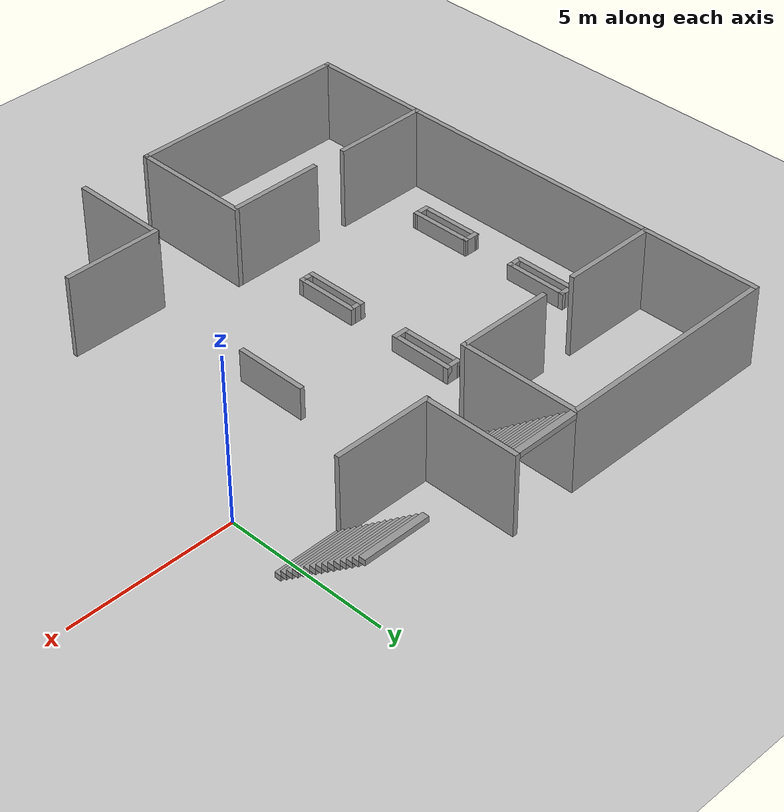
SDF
<sdf version="1.7">
 <world name="default">
  <model name="ground_plane">
   <static>1</static>
   <link name="link">
    <collision name="collision">
     <geometry><plane><normal>0 0 1</normal><size>100 100</size></plane></geometry>
     <surface>
      <contact><collide_bitmask>65535</collide_bitmask></contact>
      <friction><ode><mu>100</mu><mu2>50</mu2></ode></friction>
     </surface>
    </collision>
    <visual name="visual">
     <cast_shadows>0</cast_shadows>
     <geometry><plane><normal>0 0 1</normal><size>100 100</size></plane></geometry>
     <material>
      <script><uri>file://media/materials/scripts/gazebo.material</uri><name>Gazebo/Grey</name></script>
     </material>
    </visual>
   </link>
  </model>
  <model name="Lobby">
   <pose>-2.92426 -2.79933 0 0 -0 0</pose>
   <link name="Stairs_0">
    <visual name="Stairs_0_Visual_0">
     <pose>-2.50741 4.98625 0.083333 0 -0 -3.14159</pose>
     <geometry><box><size>2 0.2 0.166667</size></box></geometry>
     <material>
      <script><uri>file://media/materials/scripts/gazebo.material</uri><name>Gazebo/Grey</name></script>
      <ambient>1 1 1 1</ambient>
     </material>
     <meta><layer>0</layer></meta>
    </visual>
    <collision name="Stairs_0_Collision_0">
     <geometry><box><size>2 0.2 0.166667</size></box></geometry>
     <pose>-2.50741 4.98625 0.083333 0 -0 -3.14159</pose>
    </collision>
    <visual name="Stairs_0_Visual_1">
     <pose>-2.50741 5.18625 0.25 0 -0 -3.14159</pose>
     <geometry><box><size>2 0.2 0.166667</size></box></geometry>
     <material>
      <script><uri>file://media/materials/scripts/gazebo.material</uri><name>Gazebo/Grey</name></script>
      <ambient>1 1 1 1</ambient>
     </material>
     <meta><layer>0</layer></meta>
    </visual>
    <collision name="Stairs_0_Collision_1">
     <geometry><box><size>2 0.2 0.166667</size></box></geometry>
     <pose>-2.50741 5.18625 0.25 0 -0 -3.14159</pose>
    </collision>
    <visual name="Stairs_0_Visual_2">
     <pose>-2.50741 5.38624 0.416667 0 -0 -3.14159</pose>
     <geometry><box><size>2 0.2 0.166667</size></box></geometry>
     <material>
      <script><uri>file://media/materials/scripts/gazebo.material</uri><name>Gazebo/Grey</name></script>
      <ambient>1 1 1 1</ambient>
     </material>
     <meta><layer>0</layer></meta>
    </visual>
    <collision name="Stairs_0_Collision_2">
     <geometry><box><size>2 0.2 0.166667</size></box></geometry>
     <pose>-2.50741 5.38624 0.416667 0 -0 -3.14159</pose>
    </collision>
    <visual name="Stairs_0_Visual_3">
     <pose>-2.50741 5.58624 0.583333 0 -0 -3.14159</pose>
     <geometry><box><size>2 0.2 0.166667</size></box></geometry>
     <material>
      <script><uri>file://media/materials/scripts/gazebo.material</uri><name>Gazebo/Grey</name></script>
      <ambient>1 1 1 1</ambient>
     </material>
     <meta><layer>0</layer></meta>
    </visual>
    <collision name="Stairs_0_Collision_3">
     <geometry><box><size>2 0.2 0.166667</size></box></geometry>
     <pose>-2.50741 5.58624 0.583333 0 -0 -3.14159</pose>
    </collision>
    <visual name="Stairs_0_Visual_4">
     <pose>-2.50741 5.78625 0.75 0 -0 -3.14159</pose>
     <geometry><box><size>2 0.2 0.166667</size></box></geometry>
     <material>
      <script><uri>file://media/materials/scripts/gazebo.material</uri><name>Gazebo/Grey</name></script>
      <ambient>1 1 1 1</ambient>
     </material>
     <meta><layer>0</layer></meta>
    </visual>
    <collision name="Stairs_0_Collision_4">
     <geometry><box><size>2 0.2 0.166667</size></box></geometry>
     <pose>-2.50741 5.78625 0.75 0 -0 -3.14159</pose>
    </collision>
    <visual name="Stairs_0_Visual_5">
     <pose>-2.50741 5.98625 0.916667 0 -0 -3.14159</pose>
     <geometry><box><size>2 0.2 0.166667</size></box></geometry>
     <material>
      <script><uri>file://media/materials/scripts/gazebo.material</uri><name>Gazebo/Grey</name></script>
      <ambient>1 1 1 1</ambient>
     </material>
     <meta><layer>0</layer></meta>
    </visual>
    <collision name="Stairs_0_Collision_5">
     <geometry><box><size>2 0.2 0.166667</size></box></geometry>
     <pose>-2.50741 5.98625 0.916667 0 -0 -3.14159</pose>
    </collision>
    <visual name="Stairs_0_Visual_6">
     <pose>-2.50741 6.18625 1.08333 0 -0 -3.14159</pose>
     <geometry><box><size>2 0.2 0.166667</size></box></geometry>
     <material>
      <script><uri>file://media/materials/scripts/gazebo.material</uri><name>Gazebo/Grey</name></script>
      <ambient>1 1 1 1</ambient>
     </material>
     <meta><layer>0</layer></meta>
    </visual>
    <collision name="Stairs_0_Collision_6">
     <geometry><box><size>2 0.2 0.166667</size></box></geometry>
     <pose>-2.50741 6.18625 1.08333 0 -0 -3.14159</pose>
    </collision>
    <visual name="Stairs_0_Visual_7">
     <pose>-2.50741 6.38624 1.25 0 -0 -3.14159</pose>
     <geometry><box><size>2 0.2 0.166667</size></box></geometry>
     <material>
      <script><uri>file://media/materials/scripts/gazebo.material</uri><name>Gazebo/Grey</name></script>
      <ambient>1 1 1 1</ambient>
     </material>
     <meta><layer>0</layer></meta>
    </visual>
    <collision name="Stairs_0_Collision_7">
     <geometry><box><size>2 0.2 0.166667</size></box></geometry>
     <pose>-2.50741 6.38624 1.25 0 -0 -3.14159</pose>
    </collision>
    <visual name="Stairs_0_Visual_8">
     <pose>-2.50741 6.58625 1.41667 0 -0 -3.14159</pose>
     <geometry><box><size>2 0.2 0.166667</size></box></geometry>
     <material>
      <script><uri>file://media/materials/scripts/gazebo.material</uri><name>Gazebo/Grey</name></script>
      <ambient>1 1 1 1</ambient>
     </material>
     <meta><layer>0</layer></meta>
    </visual>
    <collision name="Stairs_0_Collision_8">
     <geometry><box><size>2 0.2 0.166667</size></box></geometry>
     <pose>-2.50741 6.58625 1.41667 0 -0 -3.14159</pose>
    </collision>
    <visual name="Stairs_0_Visual_9">
     <pose>-2.50741 6.78625 1.58333 0 -0 -3.14159</pose>
     <geometry><box><size>2 0.2 0.166667</size></box></geometry>
     <material>
      <script><uri>file://media/materials/scripts/gazebo.material</uri><name>Gazebo/Grey</name></script>
      <ambient>1 1 1 1</ambient>
     </material>
     <meta><layer>0</layer></meta>
    </visual>
    <collision name="Stairs_0_Collision_9">
     <geometry><box><size>2 0.2 0.166667</size></box></geometry>
     <pose>-2.50741 6.78625 1.58333 0 -0 -3.14159</pose>
    </collision>
    <visual name="Stairs_0_Visual_10">
     <pose>-2.50741 6.98625 1.75 0 -0 -3.14159</pose>
     <geometry><box><size>2 0.2 0.166667</size></box></geometry>
     <material>
      <script><uri>file://media/materials/scripts/gazebo.material</uri><name>Gazebo/Grey</name></script>
      <ambient>1 1 1 1</ambient>
     </material>
     <meta><layer>0</layer></meta>
    </visual>
    <collision name="Stairs_0_Collision_10">
     <geometry><box><size>2 0.2 0.166667</size></box></geometry>
     <pose>-2.50741 6.98625 1.75 0 -0 -3.14159</pose>
    </collision>
    <visual name="Stairs_0_Visual_11">
     <pose>-2.50741 7.18625 1.91667 0 -0 -3.14159</pose>
     <geometry><box><size>2 0.2 0.166667</size></box></geometry>
     <material>
      <script><uri>file://media/materials/scripts/gazebo.material</uri><name>Gazebo/Grey</name></script>
      <ambient>1 1 1 1</ambient>
     </material>
     <meta><layer>0</layer></meta>
    </visual>
    <collision name="Stairs_0_Collision_11">
     <geometry><box><size>2 0.2 0.166667</size></box></geometry>
     <pose>-2.50741 7.18625 1.91667 0 -0 -3.14159</pose>
    </collision>
    <visual name="Stairs_0_Visual_12">
     <pose>-2.50741 7.38624 2.08333 0 -0 -3.14159</pose>
     <geometry><box><size>2 0.2 0.166667</size></box></geometry>
     <material>
      <script><uri>file://media/materials/scripts/gazebo.material</uri><name>Gazebo/Grey</name></script>
      <ambient>1 1 1 1</ambient>
     </material>
     <meta><layer>0</layer></meta>
    </visual>
    <collision name="Stairs_0_Collision_12">
     <geometry><box><size>2 0.2 0.166667</size></box></geometry>
     <pose>-2.50741 7.38624 2.08333 0 -0 -3.14159</pose>
    </collision>
    <visual name="Stairs_0_Visual_13">
     <pose>-2.50741 7.58625 2.25 0 -0 -3.14159</pose>
     <geometry><box><size>2 0.2 0.166667</size></box></geometry>
     <material>
      <script><uri>file://media/materials/scripts/gazebo.material</uri><name>Gazebo/Grey</name></script>
      <ambient>1 1 1 1</ambient>
     </material>
     <meta><layer>0</layer></meta>
    </visual>
    <collision name="Stairs_0_Collision_13">
     <geometry><box><size>2 0.2 0.166667</size></box></geometry>
     <pose>-2.50741 7.58625 2.25 0 -0 -3.14159</pose>
    </collision>
    <visual name="Stairs_0_Visual_14">
     <pose>-2.50741 7.78625 2.41667 0 -0 -3.14159</pose>
     <geometry><box><size>2 0.2 0.166667</size></box></geometry>
     <material>
      <script><uri>file://media/materials/scripts/gazebo.material</uri><name>Gazebo/Grey</name></script>
      <ambient>1 1 1 1</ambient>
     </material>
     <meta><layer>0</layer></meta>
    </visual>
    <collision name="Stairs_0_Collision_14">
     <geometry><box><size>2 0.2 0.166667</size></box></geometry>
     <pose>-2.50741 7.78625 2.41667 0 -0 -3.14159</pose>
    </collision>
   </link>
   <link name="Stairs_1">
    <visual name="Stairs_1_Visual_0">
     <pose>2.48797 5.00037 0.083333 0 -0 -3.14159</pose>
     <geometry><box><size>2 0.2 0.166667</size></box></geometry>
     <material>
      <script><uri>file://media/materials/scripts/gazebo.material</uri><name>Gazebo/Grey</name></script>
      <ambient>1 1 1 1</ambient>
     </material>
     <meta><layer>0</layer></meta>
    </visual>
    <collision name="Stairs_1_Collision_0">
     <geometry><box><size>2 0.2 0.166667</size></box></geometry>
     <pose>2.48797 5.00037 0.083333 0 -0 -3.14159</pose>
    </collision>
    <visual name="Stairs_1_Visual_1">
     <pose>2.48797 5.20037 0.25 0 -0 -3.14159</pose>
     <geometry><box><size>2 0.2 0.166667</size></box></geometry>
     <material>
      <script><uri>file://media/materials/scripts/gazebo.material</uri><name>Gazebo/Grey</name></script>
      <ambient>1 1 1 1</ambient>
     </material>
     <meta><layer>0</layer></meta>
    </visual>
    <collision name="Stairs_1_Collision_1">
     <geometry><box><size>2 0.2 0.166667</size></box></geometry>
     <pose>2.48797 5.20037 0.25 0 -0 -3.14159</pose>
    </collision>
    <visual name="Stairs_1_Visual_2">
     <pose>2.48797 5.40037 0.416667 0 -0 -3.14159</pose>
     <geometry><box><size>2 0.2 0.166667</size></box></geometry>
     <material>
      <script><uri>file://media/materials/scripts/gazebo.material</uri><name>Gazebo/Grey</name></script>
      <ambient>1 1 1 1</ambient>
     </material>
     <meta><layer>0</layer></meta>
    </visual>
    <collision name="Stairs_1_Collision_2">
     <geometry><box><size>2 0.2 0.166667</size></box></geometry>
     <pose>2.48797 5.40037 0.416667 0 -0 -3.14159</pose>
    </collision>
    <visual name="Stairs_1_Visual_3">
     <pose>2.48797 5.60037 0.583333 0 -0 -3.14159</pose>
     <geometry><box><size>2 0.2 0.166667</size></box></geometry>
     <material>
      <script><uri>file://media/materials/scripts/gazebo.material</uri><name>Gazebo/Grey</name></script>
      <ambient>1 1 1 1</ambient>
     </material>
     <meta><layer>0</layer></meta>
    </visual>
    <collision name="Stairs_1_Collision_3">
     <geometry><box><size>2 0.2 0.166667</size></box></geometry>
     <pose>2.48797 5.60037 0.583333 0 -0 -3.14159</pose>
    </collision>
    <visual name="Stairs_1_Visual_4">
     <pose>2.48797 5.80037 0.75 0 -0 -3.14159</pose>
     <geometry><box><size>2 0.2 0.166667</size></box></geometry>
     <material>
      <script><uri>file://media/materials/scripts/gazebo.material</uri><name>Gazebo/Grey</name></script>
      <ambient>1 1 1 1</ambient>
     </material>
     <meta><layer>0</layer></meta>
    </visual>
    <collision name="Stairs_1_Collision_4">
     <geometry><box><size>2 0.2 0.166667</size></box></geometry>
     <pose>2.48797 5.80037 0.75 0 -0 -3.14159</pose>
    </collision>
    <visual name="Stairs_1_Visual_5">
     <pose>2.48797 6.00037 0.916667 0 -0 -3.14159</pose>
     <geometry><box><size>2 0.2 0.166667</size></box></geometry>
     <material>
      <script><uri>file://media/materials/scripts/gazebo.material</uri><name>Gazebo/Grey</name></script>
      <ambient>1 1 1 1</ambient>
     </material>
     <meta><layer>0</layer></meta>
    </visual>
    <collision name="Stairs_1_Collision_5">
     <geometry><box><size>2 0.2 0.166667</size></box></geometry>
     <pose>2.48797 6.00037 0.916667 0 -0 -3.14159</pose>
    </collision>
    <visual name="Stairs_1_Visual_6">
     <pose>2.48797 6.20037 1.08333 0 -0 -3.14159</pose>
     <geometry><box><size>2 0.2 0.166667</size></box></geometry>
     <material>
      <script><uri>file://media/materials/scripts/gazebo.material</uri><name>Gazebo/Grey</name></script>
      <ambient>1 1 1 1</ambient>
     </material>
     <meta><layer>0</layer></meta>
    </visual>
    <collision name="Stairs_1_Collision_6">
     <geometry><box><size>2 0.2 0.166667</size></box></geometry>
     <pose>2.48797 6.20037 1.08333 0 -0 -3.14159</pose>
    </collision>
    <visual name="Stairs_1_Visual_7">
     <pose>2.48797 6.40037 1.25 0 -0 -3.14159</pose>
     <geometry><box><size>2 0.2 0.166667</size></box></geometry>
     <material>
      <script><uri>file://media/materials/scripts/gazebo.material</uri><name>Gazebo/Grey</name></script>
      <ambient>1 1 1 1</ambient>
     </material>
     <meta><layer>0</layer></meta>
    </visual>
    <collision name="Stairs_1_Collision_7">
     <geometry><box><size>2 0.2 0.166667</size></box></geometry>
     <pose>2.48797 6.40037 1.25 0 -0 -3.14159</pose>
    </collision>
    <visual name="Stairs_1_Visual_8">
     <pose>2.48797 6.60037 1.41667 0 -0 -3.14159</pose>
     <geometry><box><size>2 0.2 0.166667</size></box></geometry>
     <material>
      <script><uri>file://media/materials/scripts/gazebo.material</uri><name>Gazebo/Grey</name></script>
      <ambient>1 1 1 1</ambient>
     </material>
     <meta><layer>0</layer></meta>
    </visual>
    <collision name="Stairs_1_Collision_8">
     <geometry><box><size>2 0.2 0.166667</size></box></geometry>
     <pose>2.48797 6.60037 1.41667 0 -0 -3.14159</pose>
    </collision>
    <visual name="Stairs_1_Visual_9">
     <pose>2.48797 6.80037 1.58333 0 -0 -3.14159</pose>
     <geometry><box><size>2 0.2 0.166667</size></box></geometry>
     <material>
      <script><uri>file://media/materials/scripts/gazebo.material</uri><name>Gazebo/Grey</name></script>
      <ambient>1 1 1 1</ambient>
     </material>
     <meta><layer>0</layer></meta>
    </visual>
    <collision name="Stairs_1_Collision_9">
     <geometry><box><size>2 0.2 0.166667</size></box></geometry>
     <pose>2.48797 6.80037 1.58333 0 -0 -3.14159</pose>
    </collision>
    <visual name="Stairs_1_Visual_10">
     <pose>2.48797 7.00037 1.75 0 -0 -3.14159</pose>
     <geometry><box><size>2 0.2 0.166667</size></box></geometry>
     <material>
      <script><uri>file://media/materials/scripts/gazebo.material</uri><name>Gazebo/Grey</name></script>
      <ambient>1 1 1 1</ambient>
     </material>
     <meta><layer>0</layer></meta>
    </visual>
    <collision name="Stairs_1_Collision_10">
     <geometry><box><size>2 0.2 0.166667</size></box></geometry>
     <pose>2.48797 7.00037 1.75 0 -0 -3.14159</pose>
    </collision>
    <visual name="Stairs_1_Visual_11">
     <pose>2.48797 7.20037 1.91667 0 -0 -3.14159</pose>
     <geometry><box><size>2 0.2 0.166667</size></box></geometry>
     <material>
      <script><uri>file://media/materials/scripts/gazebo.material</uri><name>Gazebo/Grey</name></script>
      <ambient>1 1 1 1</ambient>
     </material>
     <meta><layer>0</layer></meta>
    </visual>
    <collision name="Stairs_1_Collision_11">
     <geometry><box><size>2 0.2 0.166667</size></box></geometry>
     <pose>2.48797 7.20037 1.91667 0 -0 -3.14159</pose>
    </collision>
    <visual name="Stairs_1_Visual_12">
     <pose>2.48797 7.40037 2.08333 0 -0 -3.14159</pose>
     <geometry><box><size>2 0.2 0.166667</size></box></geometry>
     <material>
      <script><uri>file://media/materials/scripts/gazebo.material</uri><name>Gazebo/Grey</name></script>
      <ambient>1 1 1 1</ambient>
     </material>
     <meta><layer>0</layer></meta>
    </visual>
    <collision name="Stairs_1_Collision_12">
     <geometry><box><size>2 0.2 0.166667</size></box></geometry>
     <pose>2.48797 7.40037 2.08333 0 -0 -3.14159</pose>
    </collision>
    <visual name="Stairs_1_Visual_13">
     <pose>2.48797 7.60037 2.25 0 -0 -3.14159</pose>
     <geometry><box><size>2 0.2 0.166667</size></box></geometry>
     <material>
      <script><uri>file://media/materials/scripts/gazebo.material</uri><name>Gazebo/Grey</name></script>
      <ambient>1 1 1 1</ambient>
     </material>
     <meta><layer>0</layer></meta>
    </visual>
    <collision name="Stairs_1_Collision_13">
     <geometry><box><size>2 0.2 0.166667</size></box></geometry>
     <pose>2.48797 7.60037 2.25 0 -0 -3.14159</pose>
    </collision>
    <visual name="Stairs_1_Visual_14">
     <pose>2.48797 7.80037 2.41667 0 -0 -3.14159</pose>
     <geometry><box><size>2 0.2 0.166667</size></box></geometry>
     <material>
      <script><uri>file://media/materials/scripts/gazebo.material</uri><name>Gazebo/Grey</name></script>
      <ambient>1 1 1 1</ambient>
     </material>
     <meta><layer>0</layer></meta>
    </visual>
    <collision name="Stairs_1_Collision_14">
     <geometry><box><size>2 0.2 0.166667</size></box></geometry>
     <pose>2.48797 7.80037 2.41667 0 -0 -3.14159</pose>
    </collision>
   </link>
   <link name="Wall_12">
    <collision name="Wall_12_Collision">
     <geometry><box><size>3.03967 0.15 2.5</size></box></geometry>
     <pose>0 0 1.25 0 -0 0</pose>
    </collision>
    <visual name="Wall_12_Visual">
     <pose>0 0 1.25 0 -0 0</pose>
     <geometry><box><size>3.03967 0.15 2.5</size></box></geometry>
     <material>
      <script><uri>file://media/materials/scripts/gazebo.material</uri><name>Gazebo/Grey</name></script>
      <ambient>1 1 1 1</ambient>
     </material>
     <meta><layer>0</layer></meta>
    </visual>
    <pose>-0.006176 4.97109 0 0 -0 0</pose>
   </link>
   <link name="Wall_124">
    <collision name="Wall_124_Collision">
     <geometry><box><size>2 0.15 0.5</size></box></geometry>
     <pose>0 0 0.25 0 -0 0</pose>
    </collision>
    <visual name="Wall_124_Visual">
     <pose>0 0 0.25 0 -0 0</pose>
     <geometry><box><size>2 0.15 0.5</size></box></geometry>
     <material>
      <script><uri>file://media/materials/scripts/gazebo.material</uri><name>Gazebo/Grey</name></script>
      <ambient>1 1 1 1</ambient>
     </material>
     <meta><layer>0</layer></meta>
    </visual>
    <pose>-9.27574 1.82533 0 0 -0 -1.5708</pose>
   </link>
   <link name="Wall_125">
    <collision name="Wall_125_Collision">
     <geometry><box><size>0.5 0.15 0.5</size></box></geometry>
     <pose>0 0 0.25 0 -0 0</pose>
    </collision>
    <visual name="Wall_125_Visual">
     <pose>0 0 0.25 0 -0 0</pose>
     <geometry><box><size>0.5 0.15 0.5</size></box></geometry>
     <material>
      <script><uri>file://media/materials/scripts/gazebo.material</uri><name>Gazebo/Grey</name></script>
      <ambient>1 1 1 1</ambient>
     </material>
     <meta><layer>0</layer></meta>
    </visual>
    <pose>-9.10074 0.900328 0 0 -0 0</pose>
   </link>
   <link name="Wall_126">
    <collision name="Wall_126_Collision">
     <geometry><box><size>2 0.15 0.5</size></box></geometry>
     <pose>0 0 0.25 0 -0 0</pose>
    </collision>
    <visual name="Wall_126_Visual">
     <pose>0 0 0.25 0 -0 0</pose>
     <geometry><box><size>2 0.15 0.5</size></box></geometry>
     <material>
      <script><uri>file://media/materials/scripts/gazebo.material</uri><name>Gazebo/Grey</name></script>
      <ambient>1 1 1 1</ambient>
     </material>
     <meta><layer>0</layer></meta>
    </visual>
    <pose>-8.92574 1.82533 0 0 -0 1.5708</pose>
   </link>
   <link name="Wall_127">
    <collision name="Wall_127_Collision">
     <geometry><box><size>0.5 0.15 0.5</size></box></geometry>
     <pose>0 0 0.25 0 -0 0</pose>
    </collision>
    <visual name="Wall_127_Visual">
     <pose>0 0 0.25 0 -0 0</pose>
     <geometry><box><size>0.5 0.15 0.5</size></box></geometry>
     <material>
      <script><uri>file://media/materials/scripts/gazebo.material</uri><name>Gazebo/Grey</name></script>
      <ambient>1 1 1 1</ambient>
     </material>
     <meta><layer>0</layer></meta>
    </visual>
    <pose>-9.10074 2.75033 0 0 -0 3.14159</pose>
   </link>
   <link name="Wall_129">
    <collision name="Wall_129_Collision">
     <geometry><box><size>2 0.15 0.5</size></box></geometry>
     <pose>0 0 0.25 0 -0 0</pose>
    </collision>
    <visual name="Wall_129_Visual">
     <pose>0 0 0.25 0 -0 0</pose>
     <geometry><box><size>2 0.15 0.5</size></box></geometry>
     <material>
      <script><uri>file://media/materials/scripts/gazebo.material</uri><name>Gazebo/Grey</name></script>
      <ambient>1 1 1 1</ambient>
     </material>
     <meta><layer>0</layer></meta>
    </visual>
    <pose>-9.26824 -1.69667 0 0 -0 1.57782</pose>
   </link>
   <link name="Wall_130">
    <collision name="Wall_130_Collision">
     <geometry><box><size>0.513 0.15 0.5</size></box></geometry>
     <pose>0 0 0.25 0 -0 0</pose>
    </collision>
    <visual name="Wall_130_Visual">
     <pose>0 0 0.25 0 -0 0</pose>
     <geometry><box><size>0.513 0.15 0.5</size></box></geometry>
     <material>
      <script><uri>file://media/materials/scripts/gazebo.material</uri><name>Gazebo/Grey</name></script>
      <ambient>1 1 1 1</ambient>
     </material>
     <meta><layer>0</layer></meta>
    </visual>
    <pose>-9.09324 -0.771672 0 0 -0 0</pose>
   </link>
   <link name="Wall_131">
    <collision name="Wall_131_Collision">
     <geometry><box><size>2 0.15 0.5</size></box></geometry>
     <pose>0 0 0.25 0 -0 0</pose>
    </collision>
    <visual name="Wall_131_Visual">
     <pose>0 0 0.25 0 -0 0</pose>
     <geometry><box><size>2 0.15 0.5</size></box></geometry>
     <material>
      <script><uri>file://media/materials/scripts/gazebo.material</uri><name>Gazebo/Grey</name></script>
      <ambient>1 1 1 1</ambient>
     </material>
     <meta><layer>0</layer></meta>
    </visual>
    <pose>-8.90524 -1.69667 0 0 -0 -1.56377</pose>
   </link>
   <link name="Wall_132">
    <collision name="Wall_132_Collision">
     <geometry><box><size>0.513 0.15 0.5</size></box></geometry>
     <pose>0 0 0.25 0 -0 0</pose>
    </collision>
    <visual name="Wall_132_Visual">
     <pose>0 0 0.25 0 -0 0</pose>
     <geometry><box><size>0.513 0.15 0.5</size></box></geometry>
     <material>
      <script><uri>file://media/materials/scripts/gazebo.material</uri><name>Gazebo/Grey</name></script>
      <ambient>1 1 1 1</ambient>
     </material>
     <meta><layer>0</layer></meta>
    </visual>
    <pose>-9.08024 -2.62167 0 0 -0 3.14159</pose>
   </link>
   <link name="Wall_139">
    <collision name="Wall_139_Collision">
     <geometry><box><size>2 0.15 0.5</size></box></geometry>
     <pose>0 0 0.25 0 -0 0</pose>
    </collision>
    <visual name="Wall_139_Visual">
     <pose>0 0 0.25 0 -0 0</pose>
     <geometry><box><size>2 0.15 0.5</size></box></geometry>
     <material>
      <script><uri>file://media/materials/scripts/gazebo.material</uri><name>Gazebo/Grey</name></script>
      <ambient>1 1 1 1</ambient>
     </material>
     <meta><layer>0</layer></meta>
    </visual>
    <pose>-4.85974 -1.68567 0 0 -0 1.5708</pose>
   </link>
   <link name="Wall_14">
    <collision name="Wall_14_Collision">
     <geometry><box><size>3 0.15 2.5</size></box></geometry>
     <pose>0 0 1.25 0 -0 0</pose>
    </collision>
    <visual name="Wall_14_Visual">
     <pose>0 0 1.25 0 -0 0</pose>
     <geometry><box><size>3 0.15 2.5</size></box></geometry>
     <material>
      <script><uri>file://media/materials/scripts/gazebo.material</uri><name>Gazebo/Grey</name></script>
      <ambient>1 1 1 1</ambient>
     </material>
     <meta><layer>0</layer></meta>
    </visual>
    <pose>-1.43779 6.39609 0 0 -0 1.5708</pose>
   </link>
   <link name="Wall_140">
    <collision name="Wall_140_Collision">
     <geometry><box><size>0.5 0.15 0.5</size></box></geometry>
     <pose>0 0 0.25 0 -0 0</pose>
    </collision>
    <visual name="Wall_140_Visual">
     <pose>0 0 0.25 0 -0 0</pose>
     <geometry><box><size>0.5 0.15 0.5</size></box></geometry>
     <material>
      <script><uri>file://media/materials/scripts/gazebo.material</uri><name>Gazebo/Grey</name></script>
      <ambient>1 1 1 1</ambient>
     </material>
     <meta><layer>0</layer></meta>
    </visual>
    <pose>-4.68474 -0.760672 0 0 -0 0</pose>
   </link>
   <link name="Wall_141">
    <collision name="Wall_141_Collision">
     <geometry><box><size>2 0.15 0.5</size></box></geometry>
     <pose>0 0 0.25 0 -0 0</pose>
    </collision>
    <visual name="Wall_141_Visual">
     <pose>0 0 0.25 0 -0 0</pose>
     <geometry><box><size>2 0.15 0.5</size></box></geometry>
     <material>
      <script><uri>file://media/materials/scripts/gazebo.material</uri><name>Gazebo/Grey</name></script>
      <ambient>1 1 1 1</ambient>
     </material>
     <meta><layer>0</layer></meta>
    </visual>
    <pose>-4.50974 -1.68567 0 0 -0 -1.5708</pose>
   </link>
   <link name="Wall_142">
    <collision name="Wall_142_Collision">
     <geometry><box><size>0.5 0.15 0.5</size></box></geometry>
     <pose>0 0 0.25 0 -0 0</pose>
    </collision>
    <visual name="Wall_142_Visual">
     <pose>0 0 0.25 0 -0 0</pose>
     <geometry><box><size>0.5 0.15 0.5</size></box></geometry>
     <material>
      <script><uri>file://media/materials/scripts/gazebo.material</uri><name>Gazebo/Grey</name></script>
      <ambient>1 1 1 1</ambient>
     </material>
     <meta><layer>0</layer></meta>
    </visual>
    <pose>-4.68474 -2.61067 0 0 -0 3.14159</pose>
   </link>
   <link name="Wall_146">
    <collision name="Wall_146_Collision">
     <geometry><box><size>0.513047 0.15 0.5</size></box></geometry>
     <pose>0 0 0.25 0 -0 0</pose>
    </collision>
    <visual name="Wall_146_Visual">
     <pose>0 0 0.25 0 -0 0</pose>
     <geometry><box><size>0.513047 0.15 0.5</size></box></geometry>
     <material>
      <script><uri>file://media/materials/scripts/gazebo.material</uri><name>Gazebo/Grey</name></script>
      <ambient>1 1 1 1</ambient>
     </material>
     <meta><layer>0</layer></meta>
    </visual>
    <pose>-4.67824 2.76033 0 0 -0 0</pose>
   </link>
   <link name="Wall_147">
    <collision name="Wall_147_Collision">
     <geometry><box><size>2 0.15 0.5</size></box></geometry>
     <pose>0 0 0.25 0 -0 0</pose>
    </collision>
    <visual name="Wall_147_Visual">
     <pose>0 0 0.25 0 -0 0</pose>
     <geometry><box><size>2 0.15 0.5</size></box></geometry>
     <material>
      <script><uri>file://media/materials/scripts/gazebo.material</uri><name>Gazebo/Grey</name></script>
      <ambient>1 1 1 1</ambient>
     </material>
     <meta><layer>0</layer></meta>
    </visual>
    <pose>-4.49674 1.83533 0 0 -0 -1.5708</pose>
   </link>
   <link name="Wall_149">
    <collision name="Wall_149_Collision">
     <geometry><box><size>0.499822 0.15 0.5</size></box></geometry>
     <pose>0 0 0.25 0 -0 0</pose>
    </collision>
    <visual name="Wall_149_Visual">
     <pose>0 0 0.25 0 -0 0</pose>
     <geometry><box><size>0.499822 0.15 0.5</size></box></geometry>
     <material>
      <script><uri>file://media/materials/scripts/gazebo.material</uri><name>Gazebo/Grey</name></script>
      <ambient>1 1 1 1</ambient>
     </material>
     <meta><layer>0</layer></meta>
    </visual>
    <pose>-4.67174 0.910328 0 0 -0 3.14159</pose>
   </link>
   <link name="Wall_150">
    <collision name="Wall_150_Collision">
     <geometry><box><size>2.00005 0.15 0.5</size></box></geometry>
     <pose>0 0 0.25 0 -0 0</pose>
    </collision>
    <visual name="Wall_150_Visual">
     <pose>0 0 0.25 0 -0 0</pose>
     <geometry><box><size>2.00005 0.15 0.5</size></box></geometry>
     <material>
      <script><uri>file://media/materials/scripts/gazebo.material</uri><name>Gazebo/Grey</name></script>
      <ambient>1 1 1 1</ambient>
     </material>
     <meta><layer>0</layer></meta>
    </visual>
    <pose>-4.85324 1.83533 0 0 -0 1.57782</pose>
   </link>
   <link name="Wall_26">
    <collision name="Wall_26_Collision">
     <geometry><box><size>3.75 0.15 2.5</size></box></geometry>
     <pose>0 0 1.25 0 -0 0</pose>
    </collision>
    <visual name="Wall_26_Visual">
     <pose>0 0 1.25 0 -0 0</pose>
     <geometry><box><size>3.75 0.15 2.5</size></box></geometry>
     <material>
      <script><uri>file://media/materials/scripts/gazebo.material</uri><name>Gazebo/Grey</name></script>
      <ambient>1 1 1 1</ambient>
     </material>
     <meta><layer>0</layer></meta>
    </visual>
    <pose>-3.58671 5.98273 0 0 -0 -1.5708</pose>
   </link>
   <link name="Wall_29">
    <collision name="Wall_29_Collision">
     <geometry><box><size>8.50477 0.15 2.5</size></box></geometry>
     <pose>0 0 1.25 0 -0 0</pose>
    </collision>
    <visual name="Wall_29_Visual">
     <pose>0 0 1.25 0 -0 0</pose>
     <geometry><box><size>8.50477 0.15 2.5</size></box></geometry>
     <material>
      <script><uri>file://media/materials/scripts/gazebo.material</uri><name>Gazebo/Grey</name></script>
      <ambient>1 1 1 1</ambient>
     </material>
     <meta><layer>0</layer></meta>
    </visual>
    <pose>-10.4367 0.010111 0 0 -0 -1.5708</pose>
   </link>
   <link name="Wall_35">
    <collision name="Wall_35_Collision">
     <geometry><box><size>3.75 0.15 2.5</size></box></geometry>
     <pose>0 0 1.25 0 -0 0</pose>
    </collision>
    <visual name="Wall_35_Visual">
     <pose>0 0 1.25 0 -0 0</pose>
     <geometry><box><size>3.75 0.15 2.5</size></box></geometry>
     <material>
      <script><uri>file://media/materials/scripts/gazebo.material</uri><name>Gazebo/Grey</name></script>
      <ambient>1 1 1 1</ambient>
     </material>
     <meta><layer>0</layer></meta>
    </visual>
    <pose>-3.58671 -5.96727 0 0 -0 -1.5708</pose>
   </link>
   <link name="Wall_41">
    <collision name="Wall_41_Collision">
     <geometry><box><size>3 0.15 2.5</size></box></geometry>
     <pose>0 0 1.25 0 -0 0</pose>
    </collision>
    <visual name="Wall_41_Visual">
     <pose>0 0 1.25 0 -0 0</pose>
     <geometry><box><size>3 0.15 2.5</size></box></geometry>
     <material>
      <script><uri>file://media/materials/scripts/gazebo.material</uri><name>Gazebo/Grey</name></script>
      <ambient>1 1 1 1</ambient>
     </material>
     <meta><layer>0</layer></meta>
    </visual>
    <pose>-0.013191 -4.89387 0 0 -0 0</pose>
   </link>
   <link name="Wall_44">
    <collision name="Wall_44_Collision">
     <geometry><box><size>3 0.15 2.5</size></box></geometry>
     <pose>0 0 1.25 0 -0 0</pose>
    </collision>
    <visual name="Wall_44_Visual">
     <pose>0 0 1.25 0 -0 0</pose>
     <geometry><box><size>3 0.15 2.5</size></box></geometry>
     <material>
      <script><uri>file://media/materials/scripts/gazebo.material</uri><name>Gazebo/Grey</name></script>
      <ambient>1 1 1 1</ambient>
     </material>
     <meta><layer>0</layer></meta>
    </visual>
    <pose>-1.42669 -6.31887 0 0 -0 -1.5708</pose>
   </link>
   <link name="Wall_46">
    <collision name="Wall_46_Collision">
     <geometry><box><size>3 0.15 2.5</size></box></geometry>
     <pose>0 0 1.25 0 -0 0</pose>
    </collision>
    <visual name="Wall_46_Visual">
     <pose>0 0 1.25 0 -0 0</pose>
     <geometry><box><size>3 0.15 2.5</size></box></geometry>
     <material>
      <script><uri>file://media/materials/scripts/gazebo.material</uri><name>Gazebo/Grey</name></script>
      <ambient>1 1 1 1</ambient>
     </material>
     <meta><layer>0</layer></meta>
    </visual>
    <pose>-9.01172 4.2027 0 0 -0 0</pose>
   </link>
   <link name="Wall_48">
    <collision name="Wall_48_Collision">
     <geometry><box><size>3 0.15 2.5</size></box></geometry>
     <pose>0 0 1.25 0 -0 0</pose>
    </collision>
    <visual name="Wall_48_Visual">
     <pose>0 0 1.25 0 -0 0</pose>
     <geometry><box><size>3 0.15 2.5</size></box></geometry>
     <material>
      <script><uri>file://media/materials/scripts/gazebo.material</uri><name>Gazebo/Grey</name></script>
      <ambient>1 1 1 1</ambient>
     </material>
     <meta><layer>0</layer></meta>
    </visual>
    <pose>-5.01171 4.18272 0 0 -0 3.14159</pose>
   </link>
   <link name="Wall_50">
    <collision name="Wall_50_Collision">
     <geometry><box><size>3.74523 0.15 2.5</size></box></geometry>
     <pose>0 0 1.25 0 -0 0</pose>
    </collision>
    <visual name="Wall_50_Visual">
     <pose>0 0 1.25 0 -0 0</pose>
     <geometry><box><size>3.74523 0.15 2.5</size></box></geometry>
     <material>
      <script><uri>file://media/materials/scripts/gazebo.material</uri><name>Gazebo/Grey</name></script>
      <ambient>1 1 1 1</ambient>
     </material>
     <meta><layer>0</layer></meta>
    </visual>
    <pose>-10.4367 5.98511 0 0 -0 1.5708</pose>
   </link>
   <link name="Wall_51">
    <collision name="Wall_51_Collision">
     <geometry><box><size>7 0.15 2.5</size></box></geometry>
     <pose>0 0 1.25 0 -0 0</pose>
    </collision>
    <visual name="Wall_51_Visual">
     <pose>0 0 1.25 0 -0 0</pose>
     <geometry><box><size>7 0.15 2.5</size></box></geometry>
     <material>
      <script><uri>file://media/materials/scripts/gazebo.material</uri><name>Gazebo/Grey</name></script>
      <ambient>1 1 1 1</ambient>
     </material>
     <meta><layer>0</layer></meta>
    </visual>
    <pose>-7.01171 7.78273 0 0 -0 0</pose>
   </link>
   <link name="Wall_59">
    <collision name="Wall_59_Collision">
     <geometry><box><size>3.75 0.15 2.5</size></box></geometry>
     <pose>0 0 1.25 0 -0 0</pose>
    </collision>
    <visual name="Wall_59_Visual">
     <pose>0 0 1.25 0 -0 0</pose>
     <geometry><box><size>3.75 0.15 2.5</size></box></geometry>
     <material>
      <script><uri>file://media/materials/scripts/gazebo.material</uri><name>Gazebo/Grey</name></script>
      <ambient>1 1 1 1</ambient>
     </material>
     <meta><layer>0</layer></meta>
    </visual>
    <pose>-10.4367 -5.96727 0 0 -0 -1.5708</pose>
   </link>
   <link name="Wall_60">
    <collision name="Wall_60_Collision">
     <geometry><box><size>7 0.15 2.5</size></box></geometry>
     <pose>0 0 1.25 0 -0 0</pose>
    </collision>
    <visual name="Wall_60_Visual">
     <pose>0 0 1.25 0 -0 0</pose>
     <geometry><box><size>7 0.15 2.5</size></box></geometry>
     <material>
      <script><uri>file://media/materials/scripts/gazebo.material</uri><name>Gazebo/Grey</name></script>
      <ambient>1 1 1 1</ambient>
     </material>
     <meta><layer>0</layer></meta>
    </visual>
    <pose>-7.01171 -7.76727 0 0 -0 0</pose>
   </link>
   <link name="Wall_65">
    <collision name="Wall_65_Collision">
     <geometry><box><size>3 0.15 2.5</size></box></geometry>
     <pose>0 0 1.25 0 -0 0</pose>
    </collision>
    <visual name="Wall_65_Visual">
     <pose>0 0 1.25 0 -0 0</pose>
     <geometry><box><size>3 0.15 2.5</size></box></geometry>
     <material>
      <script><uri>file://media/materials/scripts/gazebo.material</uri><name>Gazebo/Grey</name></script>
      <ambient>1 1 1 1</ambient>
     </material>
     <meta><layer>0</layer></meta>
    </visual>
    <pose>-5.01171 -4.16728 0 0 -0 3.14159</pose>
   </link>
   <link name="Wall_67">
    <collision name="Wall_67_Collision">
     <geometry><box><size>3 0.15 2.5</size></box></geometry>
     <pose>0 0 1.25 0 -0 0</pose>
    </collision>
    <visual name="Wall_67_Visual">
     <pose>0 0 1.25 0 -0 0</pose>
     <geometry><box><size>3 0.15 2.5</size></box></geometry>
     <material>
      <script><uri>file://media/materials/scripts/gazebo.material</uri><name>Gazebo/Grey</name></script>
      <ambient>1 1 1 1</ambient>
     </material>
     <meta><layer>0</layer></meta>
    </visual>
    <pose>-9.01172 -4.16728 0 0 -0 0</pose>
   </link>
   <link name="Wall_75">
    <collision name="Wall_75_Collision">
     <geometry><box><size>2.25 0.15 1</size></box></geometry>
     <pose>0 0 0.5 0 -0 0</pose>
    </collision>
    <visual name="Wall_75_Visual">
     <pose>0 0 0.5 0 -0 0</pose>
     <geometry><box><size>2.25 0.15 1</size></box></geometry>
     <material>
      <script><uri>file://media/materials/scripts/gazebo.material</uri><name>Gazebo/Grey</name></script>
      <ambient>1 1 1 1</ambient>
     </material>
     <meta><layer>0</layer></meta>
    </visual>
    <pose>-0.89574 0.080328 0 0 -0 -1.5708</pose>
   </link>
   <static>1</static>
  </model>
 </world>
</sdf>
